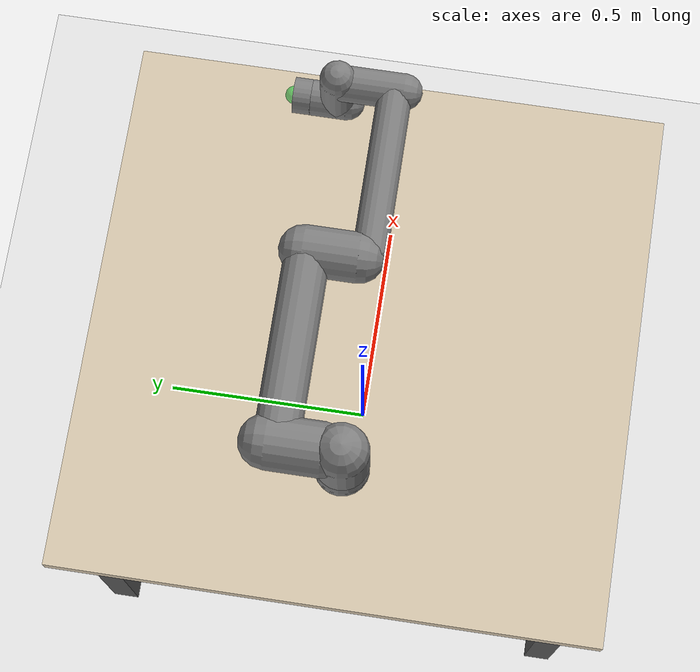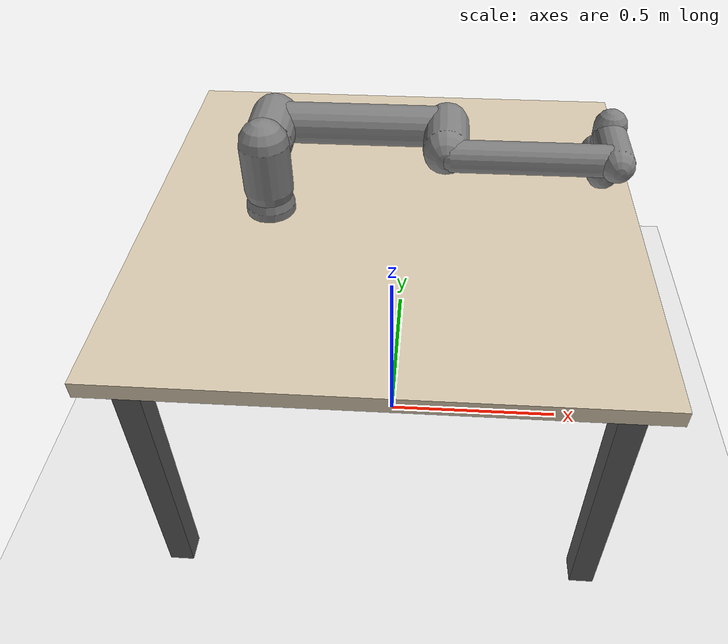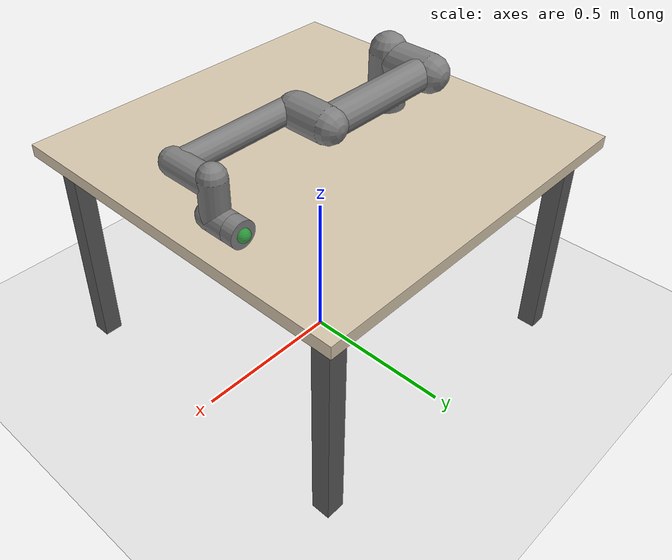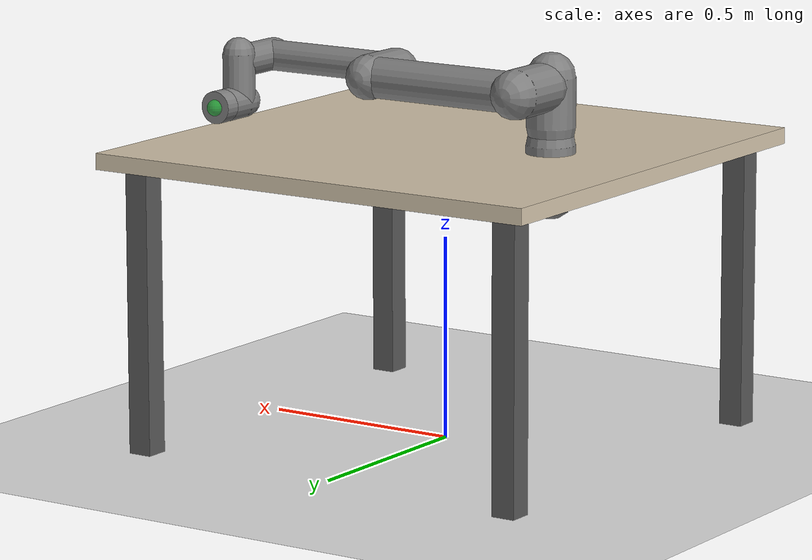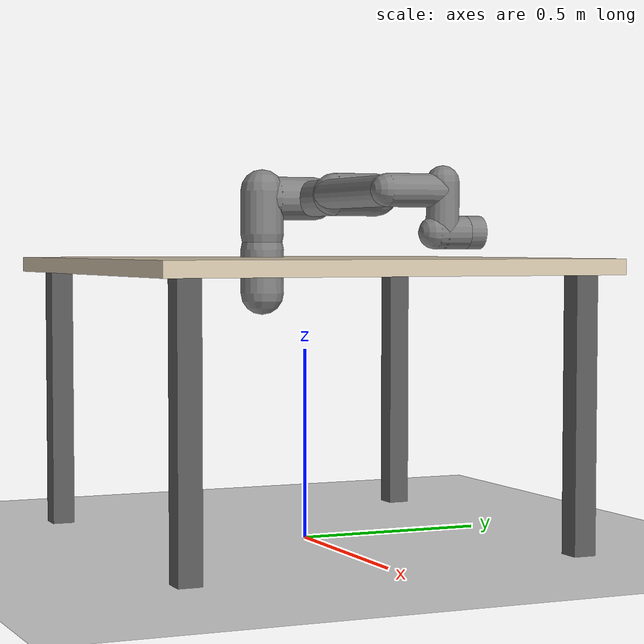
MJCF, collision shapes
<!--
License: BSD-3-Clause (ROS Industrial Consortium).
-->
<mujoco model="ur5e">
  <compiler angle="radian" meshdir="assets/ur5e" autolimits="true"/>
  <option timestep="0.002" gravity="0 0 -9.81" integrator="implicitfast"/>

  <visual>
    <quality shadowsize="4096"/>
    <map fogstart="8" fogend="12"/>
  </visual>

  <default>
    <default class="ur5e">
      <material specular="0.5" shininess="0.25"/>
      <joint axis="0 1 0" range="-6.28319 6.28319" armature="0.1"/>
      <general gaintype="fixed" biastype="affine"
               ctrlrange="-6.2831 6.2831"
               gainprm="800" biasprm="0 -800 -40"
               forcerange="-150 150"/>

      <default class="size3">
        <default class="size3_limited">
          <joint range="-3.1415 3.1415"/>
          <general ctrlrange="-3.1415 3.1415"/>
        </default>
      </default>
      <default class="size1">
        <general gainprm="200" biasprm="0 -200 -20"
                 forcerange="-28 28"/>
      </default>

      <default class="visual">
        <geom type="mesh" contype="0" conaffinity="0" group="2"/>
      </default>
      <default class="collision">
        <geom type="capsule" group="3" contype="1" conaffinity="1"/>
        <default class="eef_collision">
          <geom type="cylinder"/>
        </default>
      </default>

      <site size="0.001" rgba="0.5 0.5 0.5 0.3" group="4"/>
    </default>
  </default>

  <asset>
    <texture name="grid" type="2d" builtin="checker" width="256" height="256"
             rgb1="0.9 0.9 0.9" rgb2="0.8 0.8 0.8"/>
    <material name="tablemat" texture="grid" texrepeat="3 3" reflectance="0.05"/>

    <!-- UR colour palette (from Menagerie) -->
    <material class="ur5e" name="black"     rgba="0.033 0.033 0.033 1"/>
    <material class="ur5e" name="jointgray" rgba="0.278 0.278 0.278 1"/>
    <material class="ur5e" name="linkgray"  rgba="0.82  0.82  0.82  1"/>
    <material class="ur5e" name="urblue"    rgba="0.49  0.678 0.8   1"/>

    <!-- Visual meshes (OBJ converted from ROS-Industrial DAE) -->
    <mesh file="base_0.obj"/>
    <mesh file="base_1.obj"/>
    <mesh file="shoulder_0.obj"/>
    <mesh file="shoulder_1.obj"/>
    <mesh file="shoulder_2.obj"/>
    <mesh file="upperarm_0.obj"/>
    <mesh file="upperarm_1.obj"/>
    <mesh file="upperarm_2.obj"/>
    <mesh file="upperarm_3.obj"/>
    <mesh file="forearm_0.obj"/>
    <mesh file="forearm_1.obj"/>
    <mesh file="forearm_2.obj"/>
    <mesh file="forearm_3.obj"/>
    <mesh file="wrist1_0.obj"/>
    <mesh file="wrist1_1.obj"/>
    <mesh file="wrist1_2.obj"/>
    <mesh file="wrist2_0.obj"/>
    <mesh file="wrist2_1.obj"/>
    <mesh file="wrist2_2.obj"/>
    <mesh file="wrist3.obj"/>
  </asset>

  <!--
    UR5e DH parameters (from UR ROS2 Description):
      d1 = 0.1625 m    a2 = 0.425 m     a3 = 0.3922 m
      d4 = 0.1333 m    d5 = 0.0997 m    d6 = 0.0996 m
  -->

  <worldbody>
    <light pos="2 2 4" dir="-1 -1 -2"/>
    <geom name="table" type="box" pos="0 0 0.72" size="0.6 0.6 0.02"
          material="tablemat" rgba="0.84 0.78 0.68 1"/>
    <!-- Legs to make the table visually closer to Isaac Lab's table prop. -->
    <geom name="table_leg_fl" type="box" pos="0.52 0.52 0.36" size="0.03 0.03 0.36"
          rgba="0.35 0.35 0.35 1" friction="1 0.1 0.1"/>
    <geom name="table_leg_fr" type="box" pos="0.52 -0.52 0.36" size="0.03 0.03 0.36"
          rgba="0.35 0.35 0.35 1" friction="1 0.1 0.1"/>
    <geom name="table_leg_rl" type="box" pos="-0.52 0.52 0.36" size="0.03 0.03 0.36"
          rgba="0.35 0.35 0.35 1" friction="1 0.1 0.1"/>
    <geom name="table_leg_rr" type="box" pos="-0.52 -0.52 0.36" size="0.03 0.03 0.36"
          rgba="0.35 0.35 0.35 1" friction="1 0.1 0.1"/>
    <geom name="floor" type="plane" pos="0 0 0" size="4 4 0.1"
          rgba="0.9 0.9 0.9 1" friction="1 0.1 0.1"/>
    <camera name="top" pos="0.1 -0.3 2.5" xyaxes="1 0 0 0 1 0" mode="fixed"/>

    <!-- ================= UR5e Robot ================= -->
    <body name="base" pos="-0.30 0 0.74" quat="1 0 0 0" childclass="ur5e">
      <inertial mass="4.0" pos="0 0 0" diaginertia="0.00443 0.00443 0.0072"/>
      <geom mesh="base_0" material="black" class="visual" name="base_viz_0"/>
      <geom mesh="base_1" material="jointgray" class="visual" name="base_viz_1"/>
      <geom name="base_col" class="collision" size="0.06 0.06" pos="0 0 -0.04"/>

      <body name="shoulder" pos="0 0 0.163">
        <inertial mass="3.7" pos="0 0 0" diaginertia="0.0103 0.0103 0.00666"/>
        <joint name="shoulder_pan" class="size3" axis="0 0 1"/>
        <geom mesh="shoulder_0" material="urblue" class="visual" name="link1_viz_0"/>
        <geom mesh="shoulder_1" material="black" class="visual" name="link1_viz_1"/>
        <geom mesh="shoulder_2" material="jointgray" class="visual" name="link1_viz_2"/>
        <geom name="shoulder_col" class="collision" size="0.06 0.06" pos="0 0 -0.04"/>

        <body name="upper_arm" pos="0 0.138 0" quat="1 0 1 0">
          <inertial mass="8.393" pos="0 0 0.2125"
                    diaginertia="0.1339 0.1339 0.0151"/>
          <joint name="shoulder_lift" class="size3"/>
          <geom mesh="upperarm_0" material="linkgray" class="visual" name="link2_viz_0"/>
          <geom mesh="upperarm_1" material="black" class="visual" name="link2_viz_1"/>
          <geom mesh="upperarm_2" material="jointgray" class="visual" name="link2_viz_2"/>
          <geom mesh="upperarm_3" material="urblue" class="visual" name="link2_viz_3"/>
          <geom name="upper_arm_col_0" class="collision" pos="0 -0.04 0" quat="1 1 0 0" size="0.06 0.06"/>
          <geom name="upper_arm_col_1" class="collision" size="0.05 0.2" pos="0 0 0.2"/>

          <body name="forearm" pos="0 -0.131 0.425">
            <inertial mass="2.275" pos="0 0 0.196"
                      diaginertia="0.0312 0.0312 0.004095"/>
            <joint name="elbow" class="size3_limited"/>
            <geom mesh="forearm_0" material="urblue" class="visual" name="link3_viz_0"/>
            <geom mesh="forearm_1" material="linkgray" class="visual" name="link3_viz_1"/>
            <geom mesh="forearm_2" material="black" class="visual" name="link3_viz_2"/>
            <geom mesh="forearm_3" material="jointgray" class="visual" name="link3_viz_3"/>
            <geom name="forearm_col_0" class="collision" pos="0 0.08 0" quat="1 1 0 0" size="0.055 0.06"/>
            <geom name="forearm_col_1" class="collision" size="0.038 0.19" pos="0 0 0.2"/>

            <body name="wrist1" pos="0 0 0.392" quat="1 0 1 0">
              <inertial mass="1.219" pos="0 0.127 0"
                        diaginertia="0.00256 0.00256 0.00219"/>
              <joint name="wrist1" class="size1"/>
              <geom mesh="wrist1_0" material="black" class="visual" name="link4_viz_0"/>
              <geom mesh="wrist1_1" material="urblue" class="visual" name="link4_viz_1"/>
              <geom mesh="wrist1_2" material="jointgray" class="visual" name="link4_viz_2"/>
              <geom name="wrist1_col" class="collision" pos="0 0.05 0" quat="1 1 0 0" size="0.04 0.07"/>

              <body name="wrist2" pos="0 0.127 0">
                <inertial mass="1.219" pos="0 0 0.1"
                          diaginertia="0.00256 0.00256 0.00219"/>
                <joint name="wrist2" axis="0 0 1" class="size1"/>
                <geom mesh="wrist2_0" material="black" class="visual" name="link5_viz_0"/>
                <geom mesh="wrist2_1" material="urblue" class="visual" name="link5_viz_1"/>
                <geom mesh="wrist2_2" material="jointgray" class="visual" name="link5_viz_2"/>
                <geom name="wrist2_col_0" class="collision" size="0.04 0.06" pos="0 0 0.04"/>
                <geom name="wrist2_col_1" class="collision" pos="0 0.02 0.1" quat="1 1 0 0" size="0.04 0.04"/>

                <body name="wrist3" pos="0 0 0.1">
                  <inertial mass="0.1889" pos="0 0.0772 0" quat="1 0 0 1"
                            diaginertia="0.000132 9.91e-05 9.91e-05"/>
                  <joint name="wrist3" class="size1"/>
                  <geom material="linkgray" mesh="wrist3" class="visual" name="link6_viz"/>
                  <geom name="wrist3_col" class="eef_collision" pos="0 0.08 0" quat="1 1 0 0" size="0.04 0.02"/>

                  <!-- End-effector camera (moves with the tool flange) -->
                  <camera name="ee_cam" pos="0 0.14 0" xyaxes="1 0 0 0 0 1"
                          fovy="60" mode="fixed"/>

                  <!-- End-effector site and sphere (project convention) -->
                  <site name="ee_site" pos="0 0.1 0" quat="-1 1 0 0" size="0.01"
                        rgba="0.1 0.8 0.2 1"/>
                  <geom name="ee_sphere" type="sphere" pos="0 0.1 0"
                        size="0.02" rgba="0.1 0.8 0.2 0.6"
                        contype="0" conaffinity="0"/>
                </body>
              </body>
            </body>
          </body>
        </body>
      </body>
    </body>
  </worldbody>

  <actuator>
    <general class="size3" name="shoulder_pan_motor" joint="shoulder_pan"/>
    <general class="size3" name="shoulder_lift_motor" joint="shoulder_lift"/>
    <general class="size3_limited" name="elbow_motor" joint="elbow"/>
    <general class="size1" name="wrist1_motor" joint="wrist1"/>
    <general class="size1" name="wrist2_motor" joint="wrist2"/>
    <general class="size1" name="wrist3_motor" joint="wrist3"/>
  </actuator>

  <keyframe>
    <key name="home"
         qpos="-0.2670 -1.5708 1.5708 -1.5708 -1.5708 0"
         ctrl="-0.2670 -1.5708 1.5708 -1.5708 -1.5708 0"/>
  </keyframe>
</mujoco>
